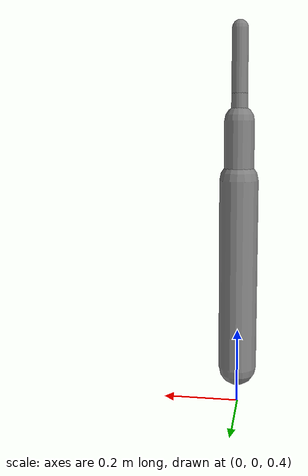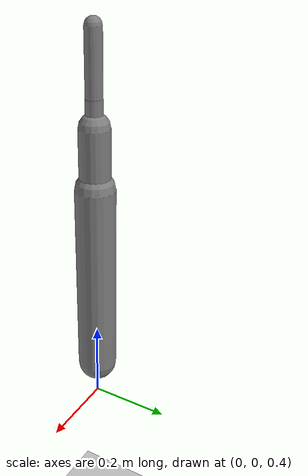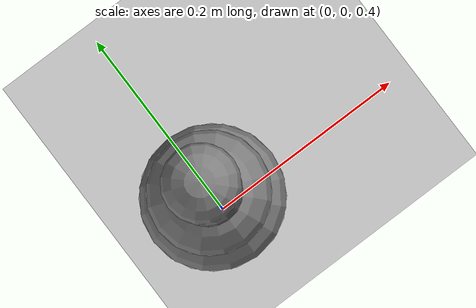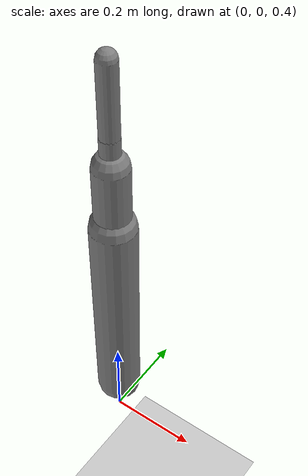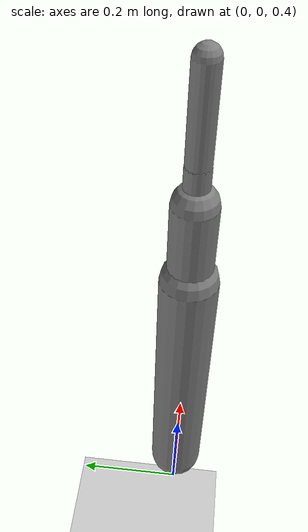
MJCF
<?xml version='1.0' encoding='UTF-8'?>
<mujoco model="RobotModel">
  <option gravity="0 0 -9.81" timestep="0.002" solver="CG" iterations="500" integrator="Euler"/>
  <worldbody>
    <geom name="Floor" type="plane" size="10 10 0.1" pos="0 0 0" rgba="0.8 0.8 0.8 1"/>
    <body name="Limb0" pos="0 0 0.5">
      <geom type="capsule" fromto="0 0 0 0 0 0.5" size="0.05" density="1000" contype="0" conaffinity="0"/>
      <body name="Limb0_68d25221" pos="0 0 0.5">
        <geom type="capsule" fromto="0 0 0 0 0 0.21641907671149804" size="0.020885594136370943" density="800" contype="0" conaffinity="0"/>
        <joint name="Joint_Limb0_Limb0_68d25221_0" type="hinge" axis="1 0 0" range="-60 60"/>
      </body>
      <body name="Limb1_68d25221" pos="0 0 0.5">
        <geom type="capsule" fromto="0 0 0 0 0 0.15035344826537916" size="0.03832995204675007" density="800" contype="0" conaffinity="0"/>
        <body name="Limb2_68d25221" pos="0 0 0.15035344826537916">
          <geom type="capsule" fromto="0 0 0 0 0 0.22421430243871068" size="0.020443138881225762" density="800" contype="0" conaffinity="0"/>
          <joint name="Joint_Limb1_68d25221_Limb2_68d25221_0" type="hinge" axis="1 0 0" range="-60 60"/>
        </body>
        <joint name="Joint_Limb0_Limb1_68d25221_0" type="hinge" axis="0 1 0" range="-60 60"/>
      </body>
    </body>
  </worldbody>
  <actuator>
    <position name="position_Actuator_Joint_Limb0_Limb0_68d25221_0" joint="Joint_Limb0_Limb0_68d25221_0" gear="1.0"/>
    <position name="position_Actuator_Joint_Limb0_Limb1_68d25221_0" joint="Joint_Limb0_Limb1_68d25221_0" gear="1.0"/>
    <position name="position_Actuator_Joint_Limb1_68d25221_Limb2_68d25221_0" joint="Joint_Limb1_68d25221_Limb2_68d25221_0" gear="1.0"/>
  </actuator>
</mujoco>
